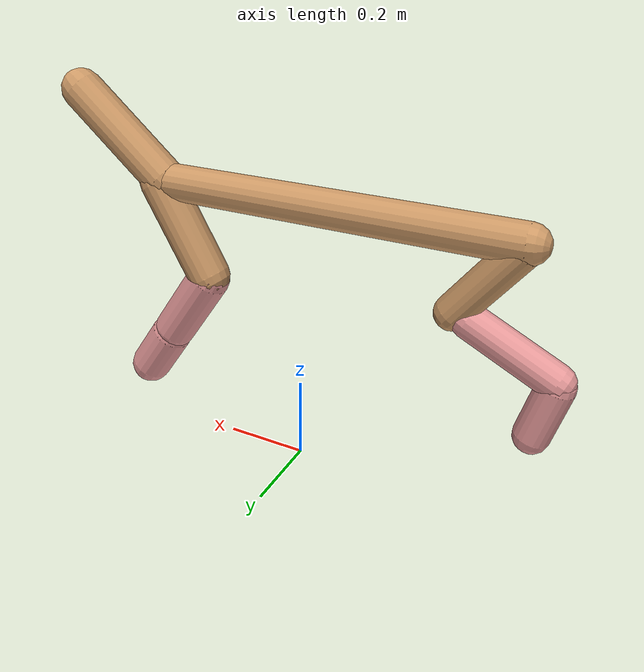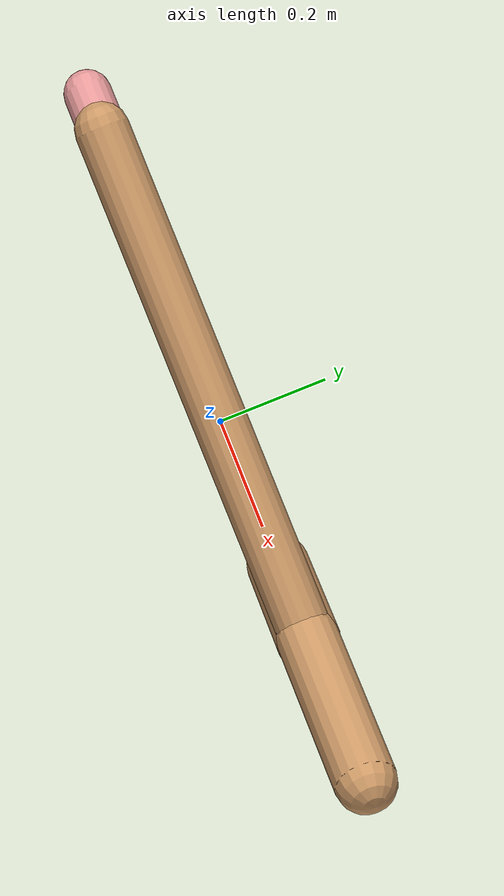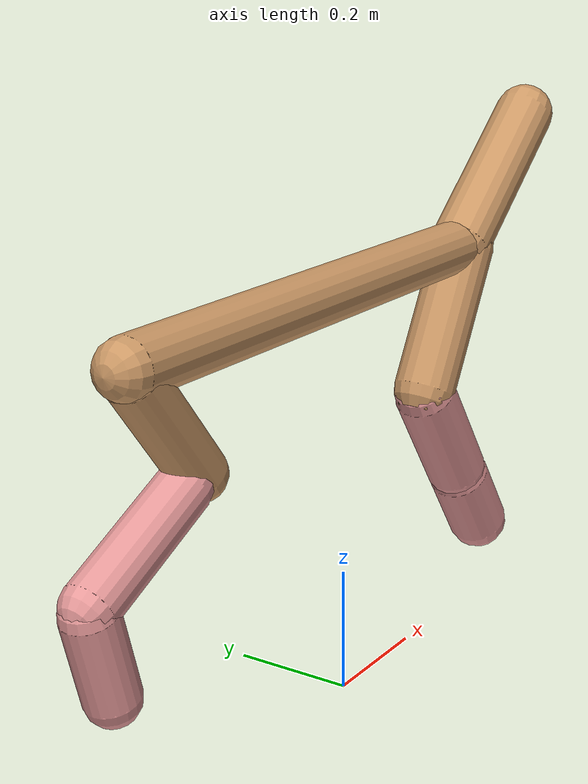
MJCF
<mujoco model="cheetah">
  <compiler angle="radian" coordinate="local" inertiafromgeom="true" settotalmass="14" />
  <default>
    <joint armature=".1" damping=".01" limited="true" solimplimit="0 .8 .03" solreflimit=".02 1" stiffness="8" />
    <geom conaffinity="0" condim="3" contype="1" friction="0.8 .1 .1" rgba="0.8 0.6 .4 1" solimp="0.0 0.8 0.01" solref="0.02 1" />
    <motor ctrllimited="true" ctrlrange="-1 1" />
  </default>
  <size nstack="300000" nuser_geom="1" />
  <option gravity="0 0 -9.81" timestep="0.01" />
  <worldbody>
    <body name="torso" pos="0.0 0.0 0.6624348537652035">
      <joint armature="0" axis="1 0 0" damping="0" limited="false" name="ignorex" pos="0 0 0" stiffness="0" type="slide" />
      <joint armature="0" axis="0 0 1" damping="0" limited="false" name="ignorez" pos="0 0 0" stiffness="0" type="slide" />
      <joint armature="0" axis="0 1 0" damping="0" limited="false" name="ignorey" pos="0 0 0" stiffness="0" type="hinge" />
      <geom fromto="-0.5 0.0 0.0 0.38398290827151194 0.0 0.0" name="torso" size="0.04447261731518065" type="capsule" />
      <geom axisangle="0 1 0 .87" name="head" pos="0.4839829082715119 0.0 0.1" size="0.05041581664805214 0.15" type="capsule" />

      <body name="bthigh" pos="-.5 0 0">
        <joint axis="0 1 0" damping="6" name="bthigh" pos="0 0 0" range="-.52 1.05" stiffness="240" type="hinge" />
        <geom axisangle="0 1 0 -3.8" name="bthigh" pos="0.075666680577124 0.0 -0.09836668475026121" size="0.04049025166164744 0.10509038877882831" type="capsule" />
        <body name="bshin" pos="0.11133336115424801 0.0 -0.1867333695005224">
          <joint axis="0 1 0" damping="4.5" name="bshin" pos="0 0 0" range="-.785 .785" stiffness="180" type="hinge" />
          <geom axisangle="0 1 0 -2.03" name="bshin" pos="-0.10307285366367108 0.0 -0.05153642683183554" rgba="0.9 0.6 0.6 1" size="0.04049025166164744 0.10871419528844309" type="capsule" />
          <body name="bfoot" pos="-0.20614570732734216 0.0 -0.10307285366367108">
            <joint axis="0 1 0" damping="3" name="bfoot" pos="0 0 0" range="-.4 .785" stiffness="120" type="hinge" />
            <geom axisangle="0 1 0 -.27" name="bfoot" pos="0.02235547802532399 0.0 -0.0722827122818809" rgba="0.9 0.6 0.6 1" size="0.04049025166164744 0.06812756238075768" type="capsule" />
            <inertial mass="10" />
          </body>
        </body>
      </body>
      <body name="fthigh" pos="0.38398290827151194 0.0 0.0">
        <joint axis="0 1 0" damping="4.5" name="fthigh" pos="0 0 0" range="-1.5 0.8" stiffness="180" type="hinge" />
        <geom axisangle="0 1 0 .52" name="fthigh" pos="-0.06736671286117211 0.0 -0.11548579347629505" size="0.05179767560094984 0.127773886559385" type="capsule" />
        <body name="fshin" pos="-0.13473342572234423 0.0 -0.2309715869525901">
          <joint axis="0 1 0" damping="3" name="fshin" pos="0 0 0" range="-1.2 1.1" stiffness="120" type="hinge" />
          <geom axisangle="0 1 0 -.6" name="fshin" pos="0.06256133048423529 0.0 -0.08662338067047963" rgba="0.9 0.6 0.6 1" size="0.05179767560094984 0.10183482688191588" type="capsule" />
          <body name="ffoot" pos="0.12512266096847058 0.0 -0.17324676134095926">
            <joint axis="0 1 0" damping="1.5" name="ffoot" pos="0 0 0" range="-3.1 -0.3" stiffness="60" type="hinge" />
            <geom axisangle="0 1 0 -.6" name="ffoot" pos="0.043512599728379966 0.0 -0.06768626624414661" rgba="0.9 0.6 0.6 1" size="0.05179767560094984 0.0672494139786237" type="capsule" />
            <inertial mass="10" />
          </body>
        </body>
      </body>
    </body>
  </worldbody>
  <actuator>
    <motor gear="120" joint="bthigh" name="bthigh" />
    <motor gear="90" joint="bshin" name="bshin" />
    <motor gear="60" joint="bfoot" name="bfoot" />
    <motor gear="120" joint="fthigh" name="fthigh" />
    <motor gear="60" joint="fshin" name="fshin" />
    <motor gear="30" joint="ffoot" name="ffoot" />
  </actuator>
</mujoco>
